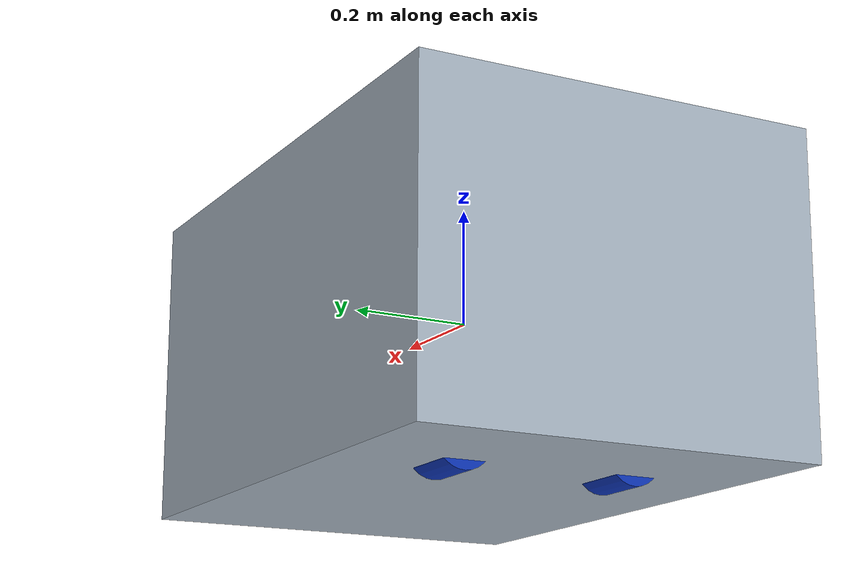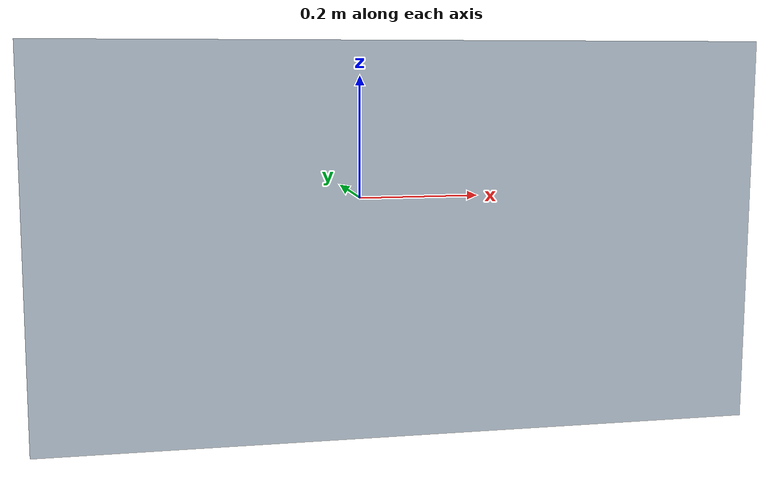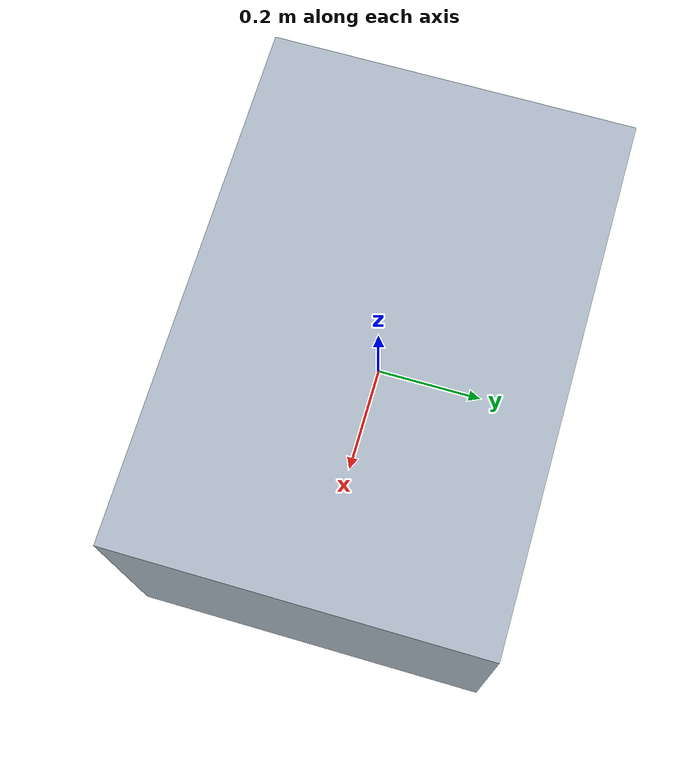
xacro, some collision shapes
<?xml version="1.0"?>
<robot name="hugr_optimus" xmlns:xacro="http://ros.org/wiki/xacro">

  <!-- ================= MATERIALS ================= -->
  <material name="marine_orange">
    <color rgba="0.95 0.45 0.05 1.0"/>
  </material>

  <material name="dark_grey">
    <color rgba="0.2 0.22 0.25 1.0"/>
  </material>

  <material name="aluminum">
    <color rgba="0.65 0.7 0.75 1.0"/>
  </material>

  <material name="thruster_blue">
    <color rgba="0.05 0.2 0.7 1.0"/>
  </material>

  <material name="propeller_gold">
    <color rgba="0.85 0.7 0.2 1.0"/>
  </material>

  <!-- ================= BASE FOOTPRINT & BASE LINK ================= -->
  <!-- base_footprint is on the calm water surface (Z=0) -->
  <link name="base_footprint"/>

  <joint name="base_footprint_joint" type="fixed">
    <parent link="base_footprint"/>
    <child link="base_link"/>
    <origin xyz="0 0 0.08" rpy="0 0 0"/>
  </joint>

  <!-- base_link is located at the vessel Center of Gravity (CG) -->
  <link name="base_link">
    <!-- Authentic 3D CAD Mesh imported from OnShape STEP model (Ferdig assembly.step) -->
    <visual>
      <origin xyz="0 0 0" rpy="0 0 -1.5708"/>
      <geometry>
        <mesh filename="package://hugr_description/meshes/frame.stl" scale="1.0 1.0 1.0"/>
      </geometry>
      <material name="aluminum"/>
    </visual>
    <collision>
      <origin xyz="0 0 -0.1" rpy="0 0 0"/>
      <geometry>
        <box size="1.00 0.69 0.54"/>
      </geometry>
    </collision>
    <inertial>
      <origin xyz="0 0 0" rpy="0 0 0"/>
      <mass value="28.0"/>
      <!-- Vessel inertia (kg*m^2) based on CAD physical mass properties -->
      <inertia ixx="1.8" ixy="0.0" ixz="0.0" iyy="4.5" iyz="0.0" izz="5.2"/>
    </inertial>
  </link>

  <!-- ================= 4-THRUSTER PROPULSION CONFIGURATION ================= -->
  <!-- Matches ESP32 micro-ROS /motor_pwms topic: [M1: Port, M2: Starboard, M3: Bow Transverse, M4: Stern Transverse] -->
  <!-- Positioned exactly at BlueRobotics T200 thruster mount coordinates extracted from CAD STEP model -->

  <!-- MOTOR 1: Port Main Longitudinal Thruster (T_200_202, +Y Side, Pushes Surge +X) -->
  <link name="port_main_thruster_link">
    <visual>
      <origin xyz="0 0 0" rpy="0 1.5708 0"/>
      <geometry>
        <cylinder radius="0.048" length="0.10"/>
      </geometry>
      <material name="thruster_blue"/>
    </visual>
    <visual>
      <origin xyz="-0.05 0 0" rpy="0 1.5708 0"/>
      <geometry>
        <sphere radius="0.02"/>
      </geometry>
      <material name="propeller_gold"/>
    </visual>
  </link>

  <joint name="port_main_thruster_joint" type="fixed">
    <parent link="base_link"/>
    <child link="port_main_thruster_link"/>
    <origin xyz="-0.2323 0.1518 -0.3379" rpy="0 0 0"/>
  </joint>

  <!-- MOTOR 2: Starboard Main Longitudinal Thruster (T_200, -Y Side, Pushes Surge +X) -->
  <link name="starboard_main_thruster_link">
    <visual>
      <origin xyz="0 0 0" rpy="0 1.5708 0"/>
      <geometry>
        <cylinder radius="0.048" length="0.10"/>
      </geometry>
      <material name="thruster_blue"/>
    </visual>
    <visual>
      <origin xyz="-0.05 0 0" rpy="0 1.5708 0"/>
      <geometry>
        <sphere radius="0.02"/>
      </geometry>
      <material name="propeller_gold"/>
    </visual>
  </link>

  <joint name="starboard_main_thruster_joint" type="fixed">
    <parent link="base_link"/>
    <child link="starboard_main_thruster_link"/>
    <origin xyz="-0.2323 -0.1518 -0.3379" rpy="0 0 0"/>
  </joint>

  <!-- MOTOR 3: Bow Transverse Tunnel Thruster (T_200_203, Front Center, Pushes Sway +/-Y) -->
  <link name="bow_transverse_thruster_link">
    <visual>
      <!-- Transverse Tunnel oriented along Y-axis -->
      <origin xyz="0 0 0" rpy="1.5708 0 0"/>
      <geometry>
        <cylinder radius="0.048" length="0.10"/>
      </geometry>
      <material name="thruster_blue"/>
    </visual>
    <visual>
      <!-- Central Impeller Hub -->
      <origin xyz="0 0 0" rpy="0 0 0"/>
      <geometry>
        <sphere radius="0.025"/>
      </geometry>
      <material name="propeller_gold"/>
    </visual>
  </link>

  <joint name="bow_transverse_thruster_joint" type="fixed">
    <parent link="base_link"/>
    <child link="bow_transverse_thruster_link"/>
    <origin xyz="0.2884 0.0 -0.2969" rpy="0 0 0"/>
  </joint>

  <!-- MOTOR 4: Stern Transverse Tunnel Thruster (T_201, Rear Center, Pushes Sway +/-Y) -->
  <link name="stern_transverse_thruster_link">
    <visual>
      <!-- Transverse Tunnel oriented along Y-axis -->
      <origin xyz="0 0 0" rpy="1.5708 0 0"/>
      <geometry>
        <cylinder radius="0.048" length="0.10"/>
      </geometry>
      <material name="thruster_blue"/>
    </visual>
    <visual>
      <!-- Central Impeller Hub -->
      <origin xyz="0 0 0" rpy="0 0 0"/>
      <geometry>
        <sphere radius="0.025"/>
      </geometry>
      <material name="propeller_gold"/>
    </visual>
  </link>

  <joint name="stern_transverse_thruster_joint" type="fixed">
    <parent link="base_link"/>
    <child link="stern_transverse_thruster_link"/>
    <origin xyz="-0.4066 0.0 -0.2969" rpy="0 0 0"/>
  </joint>

  <!-- ================= SENSORS: IMU & CAMERA ================= -->

  <!-- 1. IMU Frame (Xsens MTi-680G on vessel CG) -->
  <link name="imu_link">
    <visual>
      <origin xyz="0 0 0.01" rpy="0 0 0"/>
      <geometry>
        <box size="0.058 0.058 0.022"/>
      </geometry>
      <material name="marine_orange"/>
    </visual>
  </link>

  <joint name="imu_joint" type="fixed">
    <parent link="base_link"/>
    <child link="imu_link"/>
    <origin xyz="0.0 0.0 -0.0184" rpy="0 0 0"/>
  </joint>

  <!-- 2. Front Luxonis OAK-D Camera Frame (CAD OKE-D Pro W) -->
  <link name="camera_link">
    <visual>
      <origin xyz="0 0 0" rpy="0 0 0"/>
      <geometry>
        <box size="0.04 0.12 0.03"/>
      </geometry>
      <material name="dark_grey"/>
    </visual>
  </link>

  <joint name="camera_joint" type="fixed">
    <parent link="base_link"/>
    <child link="camera_link"/>
    <origin xyz="0.4076 0.0 -0.0391" rpy="0 0.08 0"/>
  </joint>

  <link name="camera_optical_frame"/>

  <joint name="camera_optical_joint" type="fixed">
    <parent link="camera_link"/>
    <child link="camera_optical_frame"/>
    <origin xyz="0 0 0" rpy="-1.5708 0 -1.5708"/>
  </joint>

</robot>
